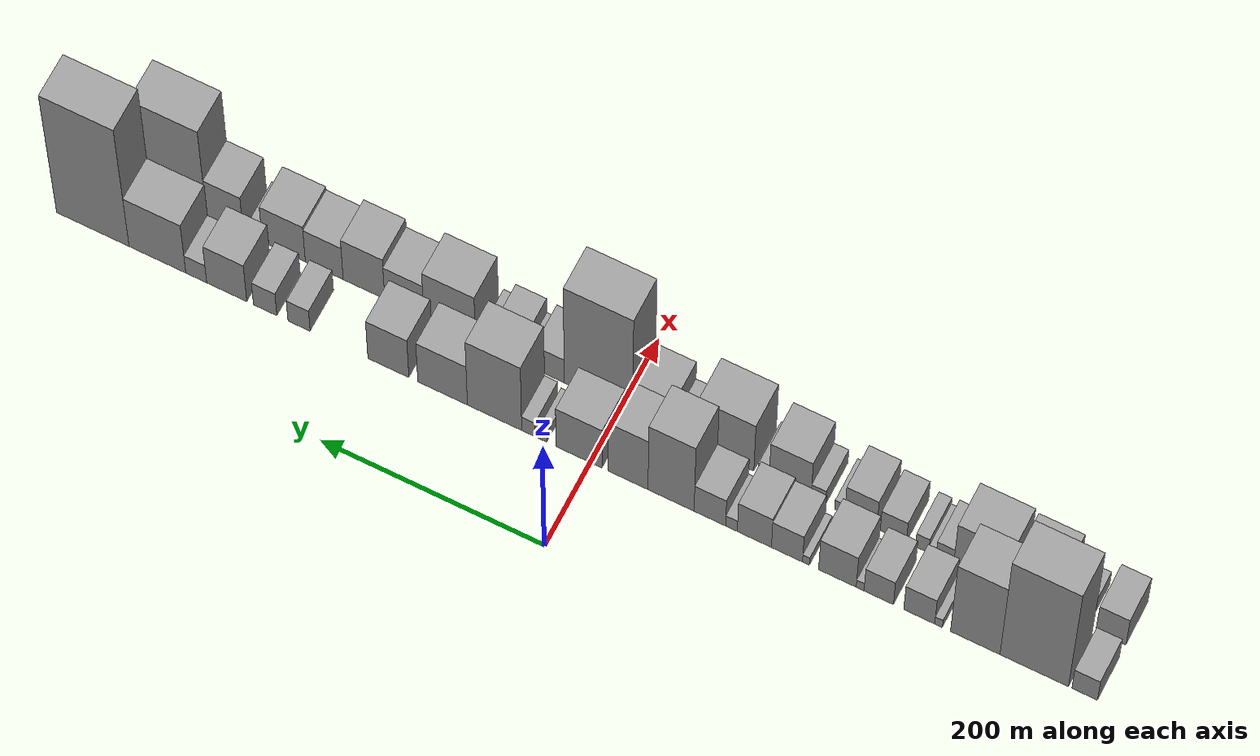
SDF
<sdf version="1.6">
 <world name="default">
  <scene>
   <sky><clouds><speed>12</speed></clouds></sky>
   <ambient>0.4 0.4 0.4 1</ambient>
   <background>0.7 0.7 0.7 1</background>
   <shadows>1</shadows>
  </scene>
  <gravity>0 0 -9.8066</gravity>
  <magnetic_field>6e-06 2.3e-05 -4.2e-05</magnetic_field>
  <physics default="0" name="default_physics" type="ode">
   <ode>
    <solver>
     <type>quick</type>
     <iters>10</iters>
     <sor>1.0</sor>
     <use_dynamic_moi_rescaling>0</use_dynamic_moi_rescaling>
    </solver>
    <constraints>
     <cfm>0</cfm>
     <erp>0.2</erp>
     <contact_max_correcting_vel>100</contact_max_correcting_vel>
     <contact_surface_layer>0.001</contact_surface_layer>
    </constraints>
   </ode>
   <max_step_size>0.004</max_step_size>
   <real_time_factor>1</real_time_factor>
   <real_time_update_rate>250</real_time_update_rate>
  </physics>
  <light name="sun" type="directional">
   <pose>0 0 10 0 0 0</pose>
   <diffuse>0.8 0.8 0.8 1</diffuse>
   <specular>0.2 0.2 0.2 1</specular>
   <attenuation>
    <range>1000</range>
    <constant>0.9</constant>
    <linear>0.01</linear>
    <quadratic>0.001</quadratic>
   </attenuation>
   <direction>-0.5 0.1 -0.9</direction>
  </light>
  <model name="building_1">
   <static>1</static>
   <pose>100.0000 -432.9461 0 0.000000 0.000000 0.000000</pose>
   <link name="link">
    <pose>0 0 19.50 0 0 0</pose>
    <collision name="collision"><geometry><box><size>40.0000 22.1078 39.0000</size></box></geometry></collision>
    <visual name="visual">
     <cast_shadows>0</cast_shadows>
     <geometry><box><size>40.0000 22.1078 39.0000</size></box></geometry>
     <material>
      <script>
       <uri>model://grey_wall/materials/scripts</uri>
       <uri>model://grey_wall/materials/textures</uri>
       <name>vrc/grey_wall</name>
      </script>
     </material>
    </visual>
   </link>
  </model>
  <model name="building_2">
   <static>1</static>
   <pose>100.0000 -389.1736 0 0.000000 0.000000 0.000000</pose>
   <link name="link">
    <pose>0 0 94.50 0 0 0</pose>
    <collision name="collision"><geometry><box><size>40.0000 59.4371 189.0000</size></box></geometry></collision>
    <visual name="visual">
     <cast_shadows>0</cast_shadows>
     <geometry><box><size>40.0000 59.4371 189.0000</size></box></geometry>
     <material>
      <script>
       <uri>model://grey_wall/materials/scripts</uri>
       <uri>model://grey_wall/materials/textures</uri>
       <name>vrc/grey_wall</name>
      </script>
     </material>
    </visual>
   </link>
  </model>
  <model name="building_3">
   <static>1</static>
   <pose>100.0000 -337.9111 0 0.000000 0.000000 0.000000</pose>
   <link name="link">
    <pose>0 0 67.50 0 0 0</pose>
    <collision name="collision"><geometry><box><size>40.0000 43.0879 135.0000</size></box></geometry></collision>
    <visual name="visual">
     <cast_shadows>0</cast_shadows>
     <geometry><box><size>40.0000 43.0879 135.0000</size></box></geometry>
     <material>
      <script>
       <uri>model://grey_wall/materials/scripts</uri>
       <uri>model://grey_wall/materials/textures</uri>
       <name>vrc/grey_wall</name>
      </script>
     </material>
    </visual>
   </link>
  </model>
  <model name="building_4">
   <static>1</static>
   <pose>100.0000 -305.9987 0 0.000000 0.000000 0.000000</pose>
   <link name="link">
    <pose>0 0 7.50 0 0 0</pose>
    <collision name="collision"><geometry><box><size>40.0000 6.7368 15.0000</size></box></geometry></collision>
    <visual name="visual">
     <cast_shadows>0</cast_shadows>
     <geometry><box><size>40.0000 6.7368 15.0000</size></box></geometry>
     <material>
      <script>
       <uri>model://grey_wall/materials/scripts</uri>
       <uri>model://grey_wall/materials/textures</uri>
       <name>vrc/grey_wall</name>
      </script>
     </material>
    </visual>
   </link>
  </model>
  <model name="building_5">
   <static>1</static>
   <pose>100.0000 -289.1249 0 0.000000 0.000000 0.000000</pose>
   <link name="link">
    <pose>0 0 24.00 0 0 0</pose>
    <collision name="collision"><geometry><box><size>40.0000 27.0108 48.0000</size></box></geometry></collision>
    <visual name="visual">
     <cast_shadows>0</cast_shadows>
     <geometry><box><size>40.0000 27.0108 48.0000</size></box></geometry>
     <material>
      <script>
       <uri>model://grey_wall/materials/scripts</uri>
       <uri>model://grey_wall/materials/textures</uri>
       <name>vrc/grey_wall</name>
      </script>
     </material>
    </visual>
   </link>
  </model>
  <model name="building_6">
   <static>1</static>
   <pose>100.0000 -253.7567 0 0.000000 0.000000 0.000000</pose>
   <link name="link">
    <pose>0 0 22.50 0 0 0</pose>
    <collision name="collision"><geometry><box><size>40.0000 25.7257 45.0000</size></box></geometry></collision>
    <visual name="visual">
     <cast_shadows>0</cast_shadows>
     <geometry><box><size>40.0000 25.7257 45.0000</size></box></geometry>
     <material>
      <script>
       <uri>model://grey_wall/materials/scripts</uri>
       <uri>model://grey_wall/materials/textures</uri>
       <name>vrc/grey_wall</name>
      </script>
     </material>
    </visual>
   </link>
  </model>
  <model name="building_7">
   <static>1</static>
   <pose>100.0000 -237.4673 0 0.000000 0.000000 0.000000</pose>
   <link name="link">
    <pose>0 0 7.50 0 0 0</pose>
    <collision name="collision"><geometry><box><size>40.0000 6.8531 15.0000</size></box></geometry></collision>
    <visual name="visual">
     <cast_shadows>0</cast_shadows>
     <geometry><box><size>40.0000 6.8531 15.0000</size></box></geometry>
     <material>
      <script>
       <uri>model://grey_wall/materials/scripts</uri>
       <uri>model://grey_wall/materials/textures</uri>
       <name>vrc/grey_wall</name>
      </script>
     </material>
    </visual>
   </link>
  </model>
  <model name="building_8">
   <static>1</static>
   <pose>100.0000 -217.5450 0 0.000000 0.000000 0.000000</pose>
   <link name="link">
    <pose>0 0 30.00 0 0 0</pose>
    <collision name="collision"><geometry><box><size>40.0000 32.9915 60.0000</size></box></geometry></collision>
    <visual name="visual">
     <cast_shadows>0</cast_shadows>
     <geometry><box><size>40.0000 32.9915 60.0000</size></box></geometry>
     <material>
      <script>
       <uri>model://grey_wall/materials/scripts</uri>
       <uri>model://grey_wall/materials/textures</uri>
       <name>vrc/grey_wall</name>
      </script>
     </material>
    </visual>
   </link>
  </model>
  <model name="building_9">
   <static>1</static>
   <pose>100.0000 -190.0021 0 0.000000 0.000000 0.000000</pose>
   <link name="link">
    <pose>0 0 7.50 0 0 0</pose>
    <collision name="collision"><geometry><box><size>40.0000 6.0941 15.0000</size></box></geometry></collision>
    <visual name="visual">
     <cast_shadows>0</cast_shadows>
     <geometry><box><size>40.0000 6.0941 15.0000</size></box></geometry>
     <material>
      <script>
       <uri>model://grey_wall/materials/scripts</uri>
       <uri>model://grey_wall/materials/textures</uri>
       <name>vrc/grey_wall</name>
      </script>
     </material>
    </visual>
   </link>
  </model>
  <model name="building_10">
   <static>1</static>
   <pose>100.0000 -173.2665 0 0.000000 0.000000 0.000000</pose>
   <link name="link">
    <pose>0 0 25.50 0 0 0</pose>
    <collision name="collision"><geometry><box><size>40.0000 27.3771 51.0000</size></box></geometry></collision>
    <visual name="visual">
     <cast_shadows>0</cast_shadows>
     <geometry><box><size>40.0000 27.3771 51.0000</size></box></geometry>
     <material>
      <script>
       <uri>model://grey_wall/materials/scripts</uri>
       <uri>model://grey_wall/materials/textures</uri>
       <name>vrc/grey_wall</name>
      </script>
     </material>
    </visual>
   </link>
  </model>
  <model name="building_11">
   <static>1</static>
   <pose>100.0000 -144.5614 0 0.000000 0.000000 0.000000</pose>
   <link name="link">
    <pose>0 0 28.50 0 0 0</pose>
    <collision name="collision"><geometry><box><size>40.0000 30.0332 57.0000</size></box></geometry></collision>
    <visual name="visual">
     <cast_shadows>0</cast_shadows>
     <geometry><box><size>40.0000 30.0332 57.0000</size></box></geometry>
     <material>
      <script>
       <uri>model://grey_wall/materials/scripts</uri>
       <uri>model://grey_wall/materials/textures</uri>
       <name>vrc/grey_wall</name>
      </script>
     </material>
    </visual>
   </link>
  </model>
  <model name="building_12">
   <static>1</static>
   <pose>100.0000 -124.3645 0 0.000000 0.000000 0.000000</pose>
   <link name="link">
    <pose>0 0 10.50 0 0 0</pose>
    <collision name="collision"><geometry><box><size>40.0000 10.3607 21.0000</size></box></geometry></collision>
    <visual name="visual">
     <cast_shadows>0</cast_shadows>
     <geometry><box><size>40.0000 10.3607 21.0000</size></box></geometry>
     <material>
      <script>
       <uri>model://grey_wall/materials/scripts</uri>
       <uri>model://grey_wall/materials/textures</uri>
       <name>vrc/grey_wall</name>
      </script>
     </material>
    </visual>
   </link>
  </model>
  <model name="building_13">
   <static>1</static>
   <pose>100.0000 -105.2782 0 0.000000 0.000000 0.000000</pose>
   <link name="link">
    <pose>0 0 25.50 0 0 0</pose>
    <collision name="collision"><geometry><box><size>40.0000 27.8120 51.0000</size></box></geometry></collision>
    <visual name="visual">
     <cast_shadows>0</cast_shadows>
     <geometry><box><size>40.0000 27.8120 51.0000</size></box></geometry>
     <material>
      <script>
       <uri>model://grey_wall/materials/scripts</uri>
       <uri>model://grey_wall/materials/textures</uri>
       <name>vrc/grey_wall</name>
      </script>
     </material>
    </visual>
   </link>
  </model>
  <model name="building_14">
   <static>1</static>
   <pose>100.0000 -70.9547 0 0.000000 0.000000 0.000000</pose>
   <link name="link">
    <pose>0 0 63.00 0 0 0</pose>
    <collision name="collision"><geometry><box><size>40.0000 40.8350 126.0000</size></box></geometry></collision>
    <visual name="visual">
     <cast_shadows>0</cast_shadows>
     <geometry><box><size>40.0000 40.8350 126.0000</size></box></geometry>
     <material>
      <script>
       <uri>model://grey_wall/materials/scripts</uri>
       <uri>model://grey_wall/materials/textures</uri>
       <name>vrc/grey_wall</name>
      </script>
     </material>
    </visual>
   </link>
  </model>
  <model name="building_15">
   <static>1</static>
   <pose>100.0000 -32.7064 0 0.000000 0.000000 0.000000</pose>
   <link name="link">
    <pose>0 0 48.00 0 0 0</pose>
    <collision name="collision"><geometry><box><size>40.0000 35.6616 96.0000</size></box></geometry></collision>
    <visual name="visual">
     <cast_shadows>0</cast_shadows>
     <geometry><box><size>40.0000 35.6616 96.0000</size></box></geometry>
     <material>
      <script>
       <uri>model://grey_wall/materials/scripts</uri>
       <uri>model://grey_wall/materials/textures</uri>
       <name>vrc/grey_wall</name>
      </script>
     </material>
    </visual>
   </link>
  </model>
  <model name="building_16">
   <static>1</static>
   <pose>100.0000 10.6532 0 0.000000 0.000000 0.000000</pose>
   <link name="link">
    <pose>0 0 37.50 0 0 0</pose>
    <collision name="collision"><geometry><box><size>40.0000 41.0575 75.0000</size></box></geometry></collision>
    <visual name="visual">
     <cast_shadows>0</cast_shadows>
     <geometry><box><size>40.0000 41.0575 75.0000</size></box></geometry>
     <material>
      <script>
       <uri>model://grey_wall/materials/scripts</uri>
       <uri>model://grey_wall/materials/textures</uri>
       <name>vrc/grey_wall</name>
      </script>
     </material>
    </visual>
   </link>
  </model>
  <model name="building_17">
   <static>1</static>
   <pose>100.0000 43.0016 0 0.000000 0.000000 0.000000</pose>
   <link name="link">
    <pose>0 0 9.00 0 0 0</pose>
    <collision name="collision"><geometry><box><size>40.0000 7.6393 18.0000</size></box></geometry></collision>
    <visual name="visual">
     <cast_shadows>0</cast_shadows>
     <geometry><box><size>40.0000 7.6393 18.0000</size></box></geometry>
     <material>
      <script>
       <uri>model://grey_wall/materials/scripts</uri>
       <uri>model://grey_wall/materials/textures</uri>
       <name>vrc/grey_wall</name>
      </script>
     </material>
    </visual>
   </link>
  </model>
  <model name="building_18">
   <static>1</static>
   <pose>100.0000 55.7528 0 0.000000 0.000000 0.000000</pose>
   <link name="link">
    <pose>0 0 13.50 0 0 0</pose>
    <collision name="collision"><geometry><box><size>40.0000 11.8632 27.0000</size></box></geometry></collision>
    <visual name="visual">
     <cast_shadows>0</cast_shadows>
     <geometry><box><size>40.0000 11.8632 27.0000</size></box></geometry>
     <material>
      <script>
       <uri>model://grey_wall/materials/scripts</uri>
       <uri>model://grey_wall/materials/textures</uri>
       <name>vrc/grey_wall</name>
      </script>
     </material>
    </visual>
   </link>
  </model>
  <model name="building_19">
   <static>1</static>
   <pose>100.0000 85.9341 0 0.000000 0.000000 0.000000</pose>
   <link name="link">
    <pose>0 0 61.50 0 0 0</pose>
    <collision name="collision"><geometry><box><size>40.0000 48.4994 123.0000</size></box></geometry></collision>
    <visual name="visual">
     <cast_shadows>0</cast_shadows>
     <geometry><box><size>40.0000 48.4994 123.0000</size></box></geometry>
     <material>
      <script>
       <uri>model://grey_wall/materials/scripts</uri>
       <uri>model://grey_wall/materials/textures</uri>
       <name>vrc/grey_wall</name>
      </script>
     </material>
    </visual>
   </link>
  </model>
  <model name="building_20">
   <static>1</static>
   <pose>100.0000 132.4131 0 0.000000 0.000000 0.000000</pose>
   <link name="link">
    <pose>0 0 37.50 0 0 0</pose>
    <collision name="collision"><geometry><box><size>40.0000 44.4586 75.0000</size></box></geometry></collision>
    <visual name="visual">
     <cast_shadows>0</cast_shadows>
     <geometry><box><size>40.0000 44.4586 75.0000</size></box></geometry>
     <material>
      <script>
       <uri>model://grey_wall/materials/scripts</uri>
       <uri>model://grey_wall/materials/textures</uri>
       <name>vrc/grey_wall</name>
      </script>
     </material>
    </visual>
   </link>
  </model>
  <model name="building_21">
   <static>1</static>
   <pose>100.0000 181.0279 0 0.000000 0.000000 0.000000</pose>
   <link name="link">
    <pose>0 0 36.00 0 0 0</pose>
    <collision name="collision"><geometry><box><size>40.0000 36.7710 72.0000</size></box></geometry></collision>
    <visual name="visual">
     <cast_shadows>0</cast_shadows>
     <geometry><box><size>40.0000 36.7710 72.0000</size></box></geometry>
     <material>
      <script>
       <uri>model://grey_wall/materials/scripts</uri>
       <uri>model://grey_wall/materials/textures</uri>
       <name>vrc/grey_wall</name>
      </script>
     </material>
    </visual>
   </link>
  </model>
  <model name="building_22">
   <static>1</static>
   <pose>100.0000 261.4690 0 0.000000 0.000000 0.000000</pose>
   <link name="link">
    <pose>0 0 19.50 0 0 0</pose>
    <collision name="collision"><geometry><box><size>40.0000 20.0371 39.0000</size></box></geometry></collision>
    <visual name="visual">
     <cast_shadows>0</cast_shadows>
     <geometry><box><size>40.0000 20.0371 39.0000</size></box></geometry>
     <material>
      <script>
       <uri>model://grey_wall/materials/scripts</uri>
       <uri>model://grey_wall/materials/textures</uri>
       <name>vrc/grey_wall</name>
      </script>
     </material>
    </visual>
   </link>
  </model>
  <model name="building_23">
   <static>1</static>
   <pose>100.0000 292.0879 0 0.000000 0.000000 0.000000</pose>
   <link name="link">
    <pose>0 0 21.00 0 0 0</pose>
    <collision name="collision"><geometry><box><size>40.0000 21.2007 42.0000</size></box></geometry></collision>
    <visual name="visual">
     <cast_shadows>0</cast_shadows>
     <geometry><box><size>40.0000 21.2007 42.0000</size></box></geometry>
     <material>
      <script>
       <uri>model://grey_wall/materials/scripts</uri>
       <uri>model://grey_wall/materials/textures</uri>
       <name>vrc/grey_wall</name>
      </script>
     </material>
    </visual>
   </link>
  </model>
  <model name="building_24">
   <static>1</static>
   <pose>100.0000 326.8758 0 0.000000 0.000000 0.000000</pose>
   <link name="link">
    <pose>0 0 34.50 0 0 0</pose>
    <collision name="collision"><geometry><box><size>40.0000 36.3751 69.0000</size></box></geometry></collision>
    <visual name="visual">
     <cast_shadows>0</cast_shadows>
     <geometry><box><size>40.0000 36.3751 69.0000</size></box></geometry>
     <material>
      <script>
       <uri>model://grey_wall/materials/scripts</uri>
       <uri>model://grey_wall/materials/textures</uri>
       <name>vrc/grey_wall</name>
      </script>
     </material>
    </visual>
   </link>
  </model>
  <model name="building_25">
   <static>1</static>
   <pose>100.0000 354.5639 0 0.000000 0.000000 0.000000</pose>
   <link name="link">
    <pose>0 0 16.50 0 0 0</pose>
    <collision name="collision"><geometry><box><size>40.0000 19.0010 33.0000</size></box></geometry></collision>
    <visual name="visual">
     <cast_shadows>0</cast_shadows>
     <geometry><box><size>40.0000 19.0010 33.0000</size></box></geometry>
     <material>
      <script>
       <uri>model://grey_wall/materials/scripts</uri>
       <uri>model://grey_wall/materials/textures</uri>
       <name>vrc/grey_wall</name>
      </script>
     </material>
    </visual>
   </link>
  </model>
  <model name="building_26">
   <static>1</static>
   <pose>100.0000 389.8752 0 0.000000 0.000000 0.000000</pose>
   <link name="link">
    <pose>0 0 45.00 0 0 0</pose>
    <collision name="collision"><geometry><box><size>40.0000 51.6216 90.0000</size></box></geometry></collision>
    <visual name="visual">
     <cast_shadows>0</cast_shadows>
     <geometry><box><size>40.0000 51.6216 90.0000</size></box></geometry>
     <material>
      <script>
       <uri>model://grey_wall/materials/scripts</uri>
       <uri>model://grey_wall/materials/textures</uri>
       <name>vrc/grey_wall</name>
      </script>
     </material>
    </visual>
   </link>
  </model>
  <model name="building_27">
   <static>1</static>
   <pose>100.0000 448.7623 0 0.000000 0.000000 0.000000</pose>
   <link name="link">
    <pose>0 0 108.00 0 0 0</pose>
    <collision name="collision"><geometry><box><size>40.0000 66.1525 216.0000</size></box></geometry></collision>
    <visual name="visual">
     <cast_shadows>0</cast_shadows>
     <geometry><box><size>40.0000 66.1525 216.0000</size></box></geometry>
     <material>
      <script>
       <uri>model://grey_wall/materials/scripts</uri>
       <uri>model://grey_wall/materials/textures</uri>
       <name>vrc/grey_wall</name>
      </script>
     </material>
    </visual>
   </link>
  </model>
  <model name="building_28">
   <static>1</static>
   <pose>152.0000 -430.9578 0 0.000000 0.000000 0.000000</pose>
   <link name="link">
    <pose>0 0 25.50 0 0 0</pose>
    <collision name="collision"><geometry><box><size>40.0000 26.0844 51.0000</size></box></geometry></collision>
    <visual name="visual">
     <cast_shadows>0</cast_shadows>
     <geometry><box><size>40.0000 26.0844 51.0000</size></box></geometry>
     <material>
      <script>
       <uri>model://grey_wall/materials/scripts</uri>
       <uri>model://grey_wall/materials/textures</uri>
       <name>vrc/grey_wall</name>
      </script>
     </material>
    </visual>
   </link>
  </model>
  <model name="building_29">
   <static>1</static>
   <pose>152.0000 -404.2515 0 0.000000 0.000000 0.000000</pose>
   <link name="link">
    <pose>0 0 13.50 0 0 0</pose>
    <collision name="collision"><geometry><box><size>40.0000 13.3281 27.0000</size></box></geometry></collision>
    <visual name="visual">
     <cast_shadows>0</cast_shadows>
     <geometry><box><size>40.0000 13.3281 27.0000</size></box></geometry>
     <material>
      <script>
       <uri>model://grey_wall/materials/scripts</uri>
       <uri>model://grey_wall/materials/textures</uri>
       <name>vrc/grey_wall</name>
      </script>
     </material>
    </visual>
   </link>
  </model>
  <model name="building_30">
   <static>1</static>
   <pose>152.0000 -393.2821 0 0.000000 0.000000 0.000000</pose>
   <link name="link">
    <pose>0 0 9.00 0 0 0</pose>
    <collision name="collision"><geometry><box><size>40.0000 8.6107 18.0000</size></box></geometry></collision>
    <visual name="visual">
     <cast_shadows>0</cast_shadows>
     <geometry><box><size>40.0000 8.6107 18.0000</size></box></geometry>
     <material>
      <script>
       <uri>model://grey_wall/materials/scripts</uri>
       <uri>model://grey_wall/materials/textures</uri>
       <name>vrc/grey_wall</name>
      </script>
     </material>
    </visual>
   </link>
  </model>
  <model name="building_31">
   <static>1</static>
   <pose>152.0000 -364.8639 0 0.000000 0.000000 0.000000</pose>
   <link name="link">
    <pose>0 0 37.50 0 0 0</pose>
    <collision name="collision"><geometry><box><size>40.0000 40.2258 75.0000</size></box></geometry></collision>
    <visual name="visual">
     <cast_shadows>0</cast_shadows>
     <geometry><box><size>40.0000 40.2258 75.0000</size></box></geometry>
     <material>
      <script>
       <uri>model://grey_wall/materials/scripts</uri>
       <uri>model://grey_wall/materials/textures</uri>
       <name>vrc/grey_wall</name>
      </script>
     </material>
    </visual>
   </link>
  </model>
  <model name="building_32">
   <static>1</static>
   <pose>152.0000 -317.8684 0 0.000000 0.000000 0.000000</pose>
   <link name="link">
    <pose>0 0 40.50 0 0 0</pose>
    <collision name="collision"><geometry><box><size>40.0000 47.7650 81.0000</size></box></geometry></collision>
    <visual name="visual">
     <cast_shadows>0</cast_shadows>
     <geometry><box><size>40.0000 47.7650 81.0000</size></box></geometry>
     <material>
      <script>
       <uri>model://grey_wall/materials/scripts</uri>
       <uri>model://grey_wall/materials/textures</uri>
       <name>vrc/grey_wall</name>
      </script>
     </material>
    </visual>
   </link>
  </model>
  <model name="building_33">
   <static>1</static>
   <pose>152.0000 -286.2804 0 0.000000 0.000000 0.000000</pose>
   <link name="link">
    <pose>0 0 15.00 0 0 0</pose>
    <collision name="collision"><geometry><box><size>40.0000 15.4111 30.0000</size></box></geometry></collision>
    <visual name="visual">
     <cast_shadows>0</cast_shadows>
     <geometry><box><size>40.0000 15.4111 30.0000</size></box></geometry>
     <material>
      <script>
       <uri>model://grey_wall/materials/scripts</uri>
       <uri>model://grey_wall/materials/textures</uri>
       <name>vrc/grey_wall</name>
      </script>
     </material>
    </visual>
   </link>
  </model>
  <model name="building_34">
   <static>1</static>
   <pose>152.0000 -275.3213 0 0.000000 0.000000 0.000000</pose>
   <link name="link">
    <pose>0 0 7.50 0 0 0</pose>
    <collision name="collision"><geometry><box><size>40.0000 6.5071 15.0000</size></box></geometry></collision>
    <visual name="visual">
     <cast_shadows>0</cast_shadows>
     <geometry><box><size>40.0000 6.5071 15.0000</size></box></geometry>
     <material>
      <script>
       <uri>model://grey_wall/materials/scripts</uri>
       <uri>model://grey_wall/materials/textures</uri>
       <name>vrc/grey_wall</name>
      </script>
     </material>
    </visual>
   </link>
  </model>
  <model name="building_35">
   <static>1</static>
   <pose>152.0000 -266.3015 0 0.000000 0.000000 0.000000</pose>
   <link name="link">
    <pose>0 0 13.50 0 0 0</pose>
    <collision name="collision"><geometry><box><size>40.0000 11.5324 27.0000</size></box></geometry></collision>
    <visual name="visual">
     <cast_shadows>0</cast_shadows>
     <geometry><box><size>40.0000 11.5324 27.0000</size></box></geometry>
     <material>
      <script>
       <uri>model://grey_wall/materials/scripts</uri>
       <uri>model://grey_wall/materials/textures</uri>
       <name>vrc/grey_wall</name>
      </script>
     </material>
    </visual>
   </link>
  </model>
  <model name="building_36">
   <static>1</static>
   <pose>152.0000 -241.0900 0 0.000000 0.000000 0.000000</pose>
   <link name="link">
    <pose>0 0 19.50 0 0 0</pose>
    <collision name="collision"><geometry><box><size>40.0000 22.8908 39.0000</size></box></geometry></collision>
    <visual name="visual">
     <cast_shadows>0</cast_shadows>
     <geometry><box><size>40.0000 22.8908 39.0000</size></box></geometry>
     <material>
      <script>
       <uri>model://grey_wall/materials/scripts</uri>
       <uri>model://grey_wall/materials/textures</uri>
       <name>vrc/grey_wall</name>
      </script>
     </material>
    </visual>
   </link>
  </model>
  <model name="building_37">
   <static>1</static>
   <pose>152.0000 -212.5399 0 0.000000 0.000000 0.000000</pose>
   <link name="link">
    <pose>0 0 27.00 0 0 0</pose>
    <collision name="collision"><geometry><box><size>40.0000 28.2093 54.0000</size></box></geometry></collision>
    <visual name="visual">
     <cast_shadows>0</cast_shadows>
     <geometry><box><size>40.0000 28.2093 54.0000</size></box></geometry>
     <material>
      <script>
       <uri>model://grey_wall/materials/scripts</uri>
       <uri>model://grey_wall/materials/textures</uri>
       <name>vrc/grey_wall</name>
      </script>
     </material>
    </visual>
   </link>
  </model>
  <model name="building_38">
   <static>1</static>
   <pose>152.0000 -193.9856 0 0.000000 0.000000 0.000000</pose>
   <link name="link">
    <pose>0 0 9.00 0 0 0</pose>
    <collision name="collision"><geometry><box><size>40.0000 8.8994 18.0000</size></box></geometry></collision>
    <visual name="visual">
     <cast_shadows>0</cast_shadows>
     <geometry><box><size>40.0000 8.8994 18.0000</size></box></geometry>
     <material>
      <script>
       <uri>model://grey_wall/materials/scripts</uri>
       <uri>model://grey_wall/materials/textures</uri>
       <name>vrc/grey_wall</name>
      </script>
     </material>
    </visual>
   </link>
  </model>
  <model name="building_39">
   <static>1</static>
   <pose>152.0000 -175.1095 0 0.000000 0.000000 0.000000</pose>
   <link name="link">
    <pose>0 0 13.50 0 0 0</pose>
    <collision name="collision"><geometry><box><size>40.0000 12.8527 27.0000</size></box></geometry></collision>
    <visual name="visual">
     <cast_shadows>0</cast_shadows>
     <geometry><box><size>40.0000 12.8527 27.0000</size></box></geometry>
     <material>
      <script>
       <uri>model://grey_wall/materials/scripts</uri>
       <uri>model://grey_wall/materials/textures</uri>
       <name>vrc/grey_wall</name>
      </script>
     </material>
    </visual>
   </link>
  </model>
  <model name="building_40">
   <static>1</static>
   <pose>152.0000 -150.1947 0 0.000000 0.000000 0.000000</pose>
   <link name="link">
    <pose>0 0 34.50 0 0 0</pose>
    <collision name="collision"><geometry><box><size>40.0000 36.9769 69.0000</size></box></geometry></collision>
    <visual name="visual">
     <cast_shadows>0</cast_shadows>
     <geometry><box><size>40.0000 36.9769 69.0000</size></box></geometry>
     <material>
      <script>
       <uri>model://grey_wall/materials/scripts</uri>
       <uri>model://grey_wall/materials/textures</uri>
       <name>vrc/grey_wall</name>
      </script>
     </material>
    </visual>
   </link>
  </model>
  <model name="building_41">
   <static>1</static>
   <pose>152.0000 -126.9344 0 0.000000 0.000000 0.000000</pose>
   <link name="link">
    <pose>0 0 10.50 0 0 0</pose>
    <collision name="collision"><geometry><box><size>40.0000 9.5437 21.0000</size></box></geometry></collision>
    <visual name="visual">
     <cast_shadows>0</cast_shadows>
     <geometry><box><size>40.0000 9.5437 21.0000</size></box></geometry>
     <material>
      <script>
       <uri>model://grey_wall/materials/scripts</uri>
       <uri>model://grey_wall/materials/textures</uri>
       <name>vrc/grey_wall</name>
      </script>
     </material>
    </visual>
   </link>
  </model>
  <model name="building_42">
   <static>1</static>
   <pose>152.0000 -93.1115 0 0.000000 0.000000 0.000000</pose>
   <link name="link">
    <pose>0 0 45.00 0 0 0</pose>
    <collision name="collision"><geometry><box><size>40.0000 50.1022 90.0000</size></box></geometry></collision>
    <visual name="visual">
     <cast_shadows>0</cast_shadows>
     <geometry><box><size>40.0000 50.1022 90.0000</size></box></geometry>
     <material>
      <script>
       <uri>model://grey_wall/materials/scripts</uri>
       <uri>model://grey_wall/materials/textures</uri>
       <name>vrc/grey_wall</name>
      </script>
     </material>
    </visual>
   </link>
  </model>
  <model name="building_43">
   <static>1</static>
   <pose>152.0000 -52.3472 0 0.000000 0.000000 0.000000</pose>
   <link name="link">
    <pose>0 0 13.50 0 0 0</pose>
    <collision name="collision"><geometry><box><size>40.0000 11.4264 27.0000</size></box></geometry></collision>
    <visual name="visual">
     <cast_shadows>0</cast_shadows>
     <geometry><box><size>40.0000 11.4264 27.0000</size></box></geometry>
     <material>
      <script>
       <uri>model://grey_wall/materials/scripts</uri>
       <uri>model://grey_wall/materials/textures</uri>
       <name>vrc/grey_wall</name>
      </script>
     </material>
    </visual>
   </link>
  </model>
  <model name="building_44">
   <static>1</static>
   <pose>152.0000 -28.6668 0 0.000000 0.000000 0.000000</pose>
   <link name="link">
    <pose>0 0 30.00 0 0 0</pose>
    <collision name="collision"><geometry><box><size>40.0000 35.9344 60.0000</size></box></geometry></collision>
    <visual name="visual">
     <cast_shadows>0</cast_shadows>
     <geometry><box><size>40.0000 35.9344 60.0000</size></box></geometry>
     <material>
      <script>
       <uri>model://grey_wall/materials/scripts</uri>
       <uri>model://grey_wall/materials/textures</uri>
       <name>vrc/grey_wall</name>
      </script>
     </material>
    </visual>
   </link>
  </model>
  <model name="building_45">
   <static>1</static>
   <pose>152.0000 19.8376 0 0.000000 0.000000 0.000000</pose>
   <link name="link">
    <pose>0 0 91.50 0 0 0</pose>
    <collision name="collision"><geometry><box><size>40.0000 61.0743 183.0000</size></box></geometry></collision>
    <visual name="visual">
     <cast_shadows>0</cast_shadows>
     <geometry><box><size>40.0000 61.0743 183.0000</size></box></geometry>
     <material>
      <script>
       <uri>model://grey_wall/materials/scripts</uri>
       <uri>model://grey_wall/materials/textures</uri>
       <name>vrc/grey_wall</name>
      </script>
     </material>
    </visual>
   </link>
  </model>
  <model name="building_46">
   <static>1</static>
   <pose>152.0000 63.6874 0 0.000000 0.000000 0.000000</pose>
   <link name="link">
    <pose>0 0 22.50 0 0 0</pose>
    <collision name="collision"><geometry><box><size>40.0000 26.6254 45.0000</size></box></geometry></collision>
    <visual name="visual">
     <cast_shadows>0</cast_shadows>
     <geometry><box><size>40.0000 26.6254 45.0000</size></box></geometry>
     <material>
      <script>
       <uri>model://grey_wall/materials/scripts</uri>
       <uri>model://grey_wall/materials/textures</uri>
       <name>vrc/grey_wall</name>
      </script>
     </material>
    </visual>
   </link>
  </model>
  <model name="building_47">
   <static>1</static>
   <pose>152.0000 81.5536 0 0.000000 0.000000 0.000000</pose>
   <link name="link">
    <pose>0 0 10.50 0 0 0</pose>
    <collision name="collision"><geometry><box><size>40.0000 9.1069 21.0000</size></box></geometry></collision>
    <visual name="visual">
     <cast_shadows>0</cast_shadows>
     <geometry><box><size>40.0000 9.1069 21.0000</size></box></geometry>
     <material>
      <script>
       <uri>model://grey_wall/materials/scripts</uri>
       <uri>model://grey_wall/materials/textures</uri>
       <name>vrc/grey_wall</name>
      </script>
     </material>
    </visual>
   </link>
  </model>
  <model name="building_48">
   <static>1</static>
   <pose>152.0000 99.8533 0 0.000000 0.000000 0.000000</pose>
   <link name="link">
    <pose>0 0 24.00 0 0 0</pose>
    <collision name="collision"><geometry><box><size>40.0000 27.4926 48.0000</size></box></geometry></collision>
    <visual name="visual">
     <cast_shadows>0</cast_shadows>
     <geometry><box><size>40.0000 27.4926 48.0000</size></box></geometry>
     <material>
      <script>
       <uri>model://grey_wall/materials/scripts</uri>
       <uri>model://grey_wall/materials/textures</uri>
       <name>vrc/grey_wall</name>
      </script>
     </material>
    </visual>
   </link>
  </model>
  <model name="building_49">
   <static>1</static>
   <pose>152.0000 119.1938 0 0.000000 0.000000 0.000000</pose>
   <link name="link">
    <pose>0 0 13.50 0 0 0</pose>
    <collision name="collision"><geometry><box><size>40.0000 11.1884 27.0000</size></box></geometry></collision>
    <visual name="visual">
     <cast_shadows>0</cast_shadows>
     <geometry><box><size>40.0000 11.1884 27.0000</size></box></geometry>
     <material>
      <script>
       <uri>model://grey_wall/materials/scripts</uri>
       <uri>model://grey_wall/materials/textures</uri>
       <name>vrc/grey_wall</name>
      </script>
     </material>
    </visual>
   </link>
  </model>
  <model name="building_50">
   <static>1</static>
   <pose>152.0000 153.0263 0 0.000000 0.000000 0.000000</pose>
   <link name="link">
    <pose>0 0 42.00 0 0 0</pose>
    <collision name="collision"><geometry><box><size>40.0000 46.4765 84.0000</size></box></geometry></collision>
    <visual name="visual">
     <cast_shadows>0</cast_shadows>
     <geometry><box><size>40.0000 46.4765 84.0000</size></box></geometry>
     <material>
      <script>
       <uri>model://grey_wall/materials/scripts</uri>
       <uri>model://grey_wall/materials/textures</uri>
       <name>vrc/grey_wall</name>
      </script>
     </material>
    </visual>
   </link>
  </model>
  <model name="building_51">
   <static>1</static>
   <pose>152.0000 193.8757 0 0.000000 0.000000 0.000000</pose>
   <link name="link">
    <pose>0 0 30.00 0 0 0</pose>
    <collision name="collision"><geometry><box><size>40.0000 35.2222 60.0000</size></box></geometry></collision>
    <visual name="visual">
     <cast_shadows>0</cast_shadows>
     <geometry><box><size>40.0000 35.2222 60.0000</size></box></geometry>
     <material>
      <script>
       <uri>model://grey_wall/materials/scripts</uri>
       <uri>model://grey_wall/materials/textures</uri>
       <name>vrc/grey_wall</name>
      </script>
     </material>
    </visual>
   </link>
  </model>
  <model name="building_52">
   <static>1</static>
   <pose>152.0000 230.2405 0 0.000000 0.000000 0.000000</pose>
   <link name="link">
    <pose>0 0 37.50 0 0 0</pose>
    <collision name="collision"><geometry><box><size>40.0000 37.5075 75.0000</size></box></geometry></collision>
    <visual name="visual">
     <cast_shadows>0</cast_shadows>
     <geometry><box><size>40.0000 37.5075 75.0000</size></box></geometry>
     <material>
      <script>
       <uri>model://grey_wall/materials/scripts</uri>
       <uri>model://grey_wall/materials/textures</uri>
       <name>vrc/grey_wall</name>
      </script>
     </material>
    </visual>
   </link>
  </model>
  <model name="building_53">
   <static>1</static>
   <pose>152.0000 266.1186 0 0.000000 0.000000 0.000000</pose>
   <link name="link">
    <pose>0 0 30.00 0 0 0</pose>
    <collision name="collision"><geometry><box><size>40.0000 34.2485 60.0000</size></box></geometry></collision>
    <visual name="visual">
     <cast_shadows>0</cast_shadows>
     <geometry><box><size>40.0000 34.2485 60.0000</size></box></geometry>
     <material>
      <script>
       <uri>model://grey_wall/materials/scripts</uri>
       <uri>model://grey_wall/materials/textures</uri>
       <name>vrc/grey_wall</name>
      </script>
     </material>
    </visual>
   </link>
  </model>
  <model name="building_54">
   <static>1</static>
   <pose>152.0000 302.7324 0 0.000000 0.000000 0.000000</pose>
   <link name="link">
    <pose>0 0 33.00 0 0 0</pose>
    <collision name="collision"><geometry><box><size>40.0000 38.9792 66.0000</size></box></geometry></collision>
    <visual name="visual">
     <cast_shadows>0</cast_shadows>
     <geometry><box><size>40.0000 38.9792 66.0000</size></box></geometry>
     <material>
      <script>
       <uri>model://grey_wall/materials/scripts</uri>
       <uri>model://grey_wall/materials/textures</uri>
       <name>vrc/grey_wall</name>
      </script>
     </material>
    </visual>
   </link>
  </model>
  <model name="building_55">
   <static>1</static>
   <pose>152.0000 327.8911 0 0.000000 0.000000 0.000000</pose>
   <link name="link">
    <pose>0 0 13.50 0 0 0</pose>
    <collision name="collision"><geometry><box><size>40.0000 11.3383 27.0000</size></box></geometry></collision>
    <visual name="visual">
     <cast_shadows>0</cast_shadows>
     <geometry><box><size>40.0000 11.3383 27.0000</size></box></geometry>
     <material>
      <script>
       <uri>model://grey_wall/materials/scripts</uri>
       <uri>model://grey_wall/materials/textures</uri>
       <name>vrc/grey_wall</name>
      </script>
     </material>
    </visual>
   </link>
  </model>
  <model name="building_56">
   <static>1</static>
   <pose>152.0000 356.2718 0 0.000000 0.000000 0.000000</pose>
   <link name="link">
    <pose>0 0 33.00 0 0 0</pose>
    <collision name="collision"><geometry><box><size>40.0000 33.4230 66.0000</size></box></geometry></collision>
    <visual name="visual">
     <cast_shadows>0</cast_shadows>
     <geometry><box><size>40.0000 33.4230 66.0000</size></box></geometry>
     <material>
      <script>
       <uri>model://grey_wall/materials/scripts</uri>
       <uri>model://grey_wall/materials/textures</uri>
       <name>vrc/grey_wall</name>
      </script>
     </material>
    </visual>
   </link>
  </model>
  <model name="building_57">
   <static>1</static>
   <pose>152.0000 403.5991 0 0.000000 0.000000 0.000000</pose>
   <link name="link">
    <pose>0 0 78.00 0 0 0</pose>
    <collision name="collision"><geometry><box><size>40.0000 61.2316 156.0000</size></box></geometry></collision>
    <visual name="visual">
     <cast_shadows>0</cast_shadows>
     <geometry><box><size>40.0000 61.2316 156.0000</size></box></geometry>
     <material>
      <script>
       <uri>model://grey_wall/materials/scripts</uri>
       <uri>model://grey_wall/materials/textures</uri>
       <name>vrc/grey_wall</name>
      </script>
     </material>
    </visual>
   </link>
  </model>
  <model name="building_58">
   <static>1</static>
   <pose>152.0000 449.4934 0 0.000000 0.000000 0.000000</pose>
   <link name="link">
    <pose>0 0 27.00 0 0 0</pose>
    <collision name="collision"><geometry><box><size>40.0000 30.5572 54.0000</size></box></geometry></collision>
    <visual name="visual">
     <cast_shadows>0</cast_shadows>
     <geometry><box><size>40.0000 30.5572 54.0000</size></box></geometry>
     <material>
      <script>
       <uri>model://grey_wall/materials/scripts</uri>
       <uri>model://grey_wall/materials/textures</uri>
       <name>vrc/grey_wall</name>
      </script>
     </material>
    </visual>
   </link>
  </model>
 </world>
</sdf>
